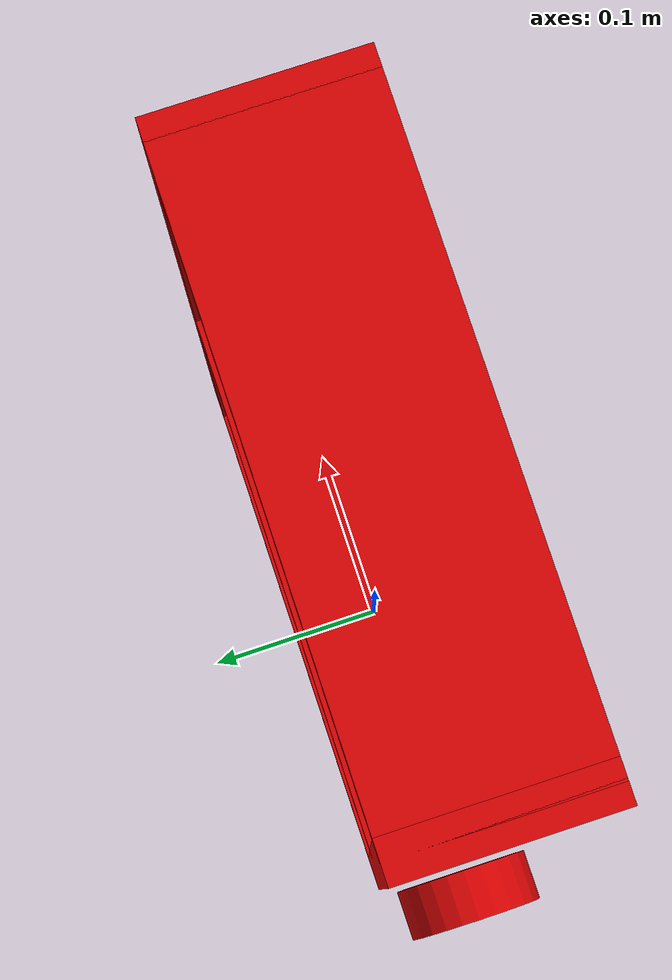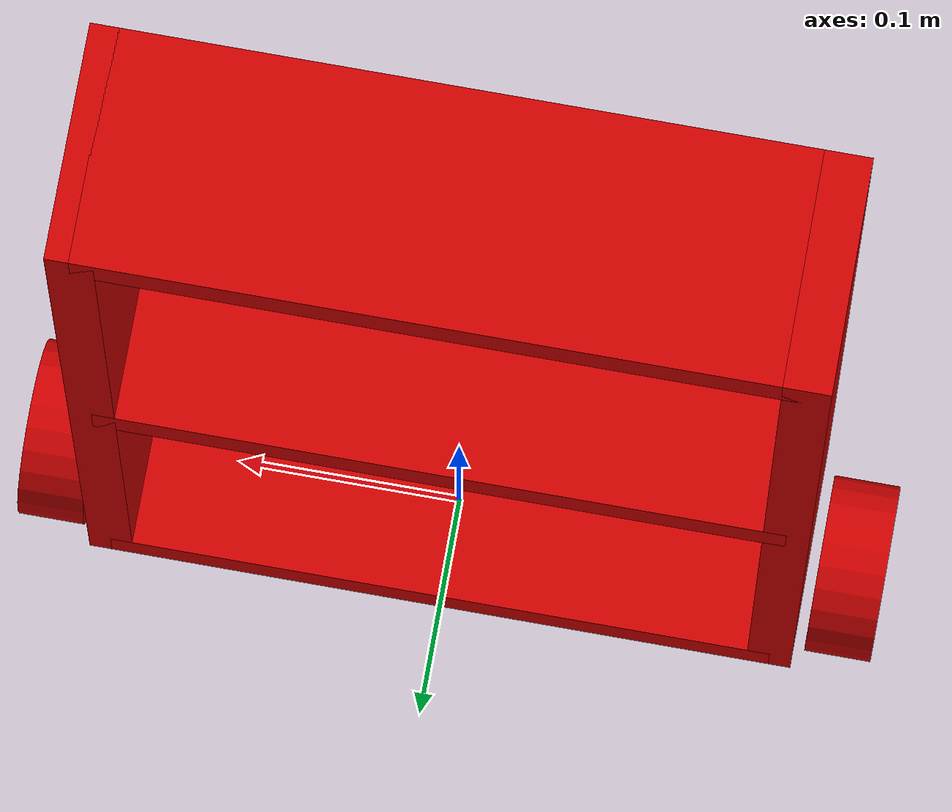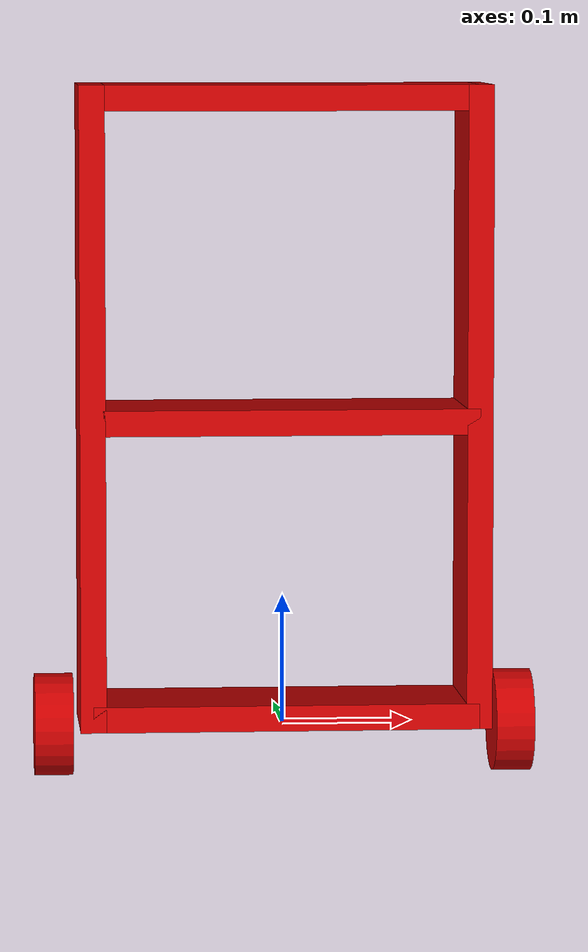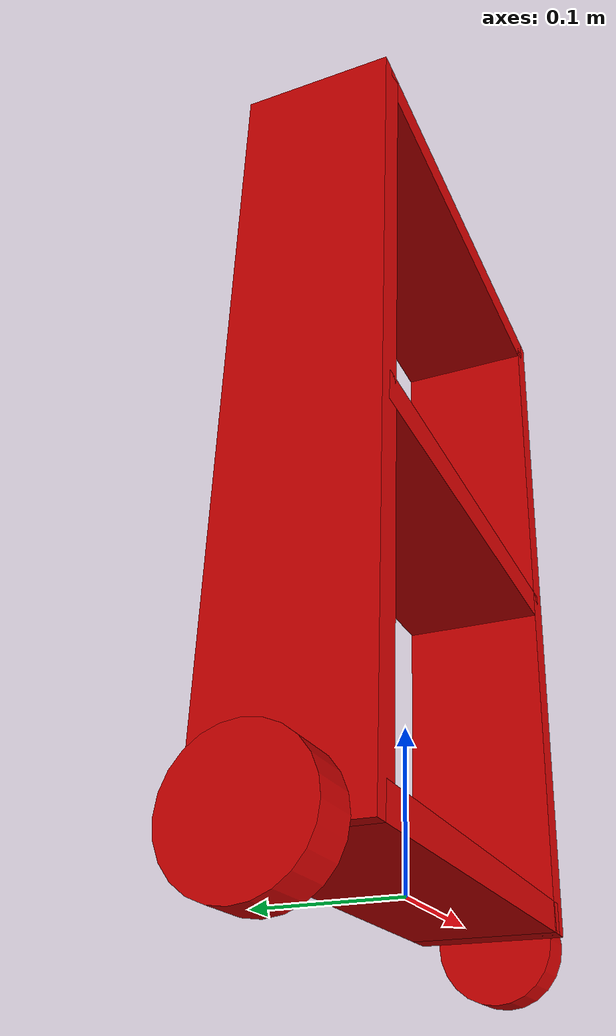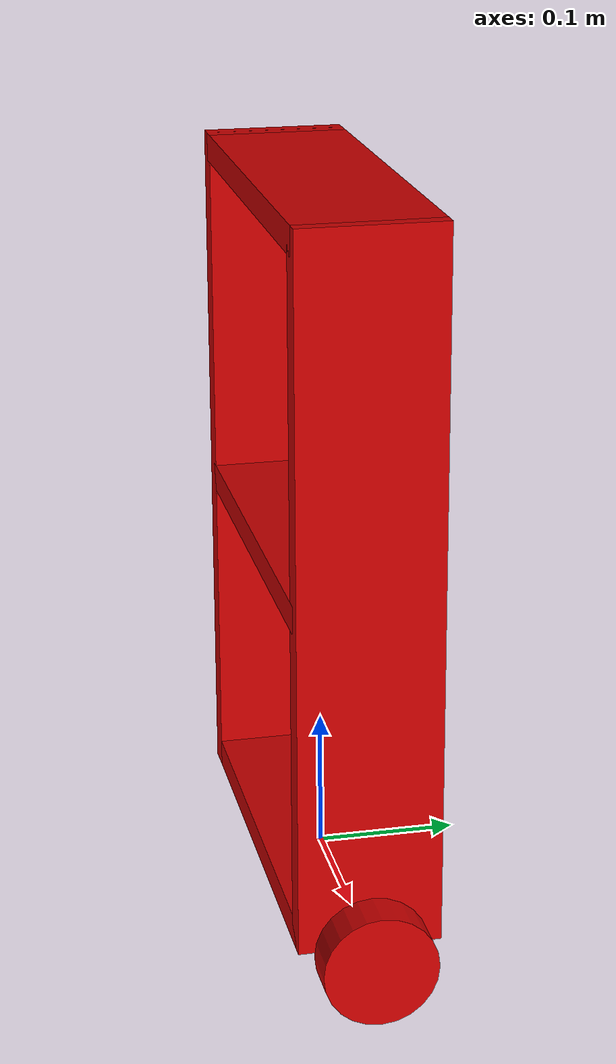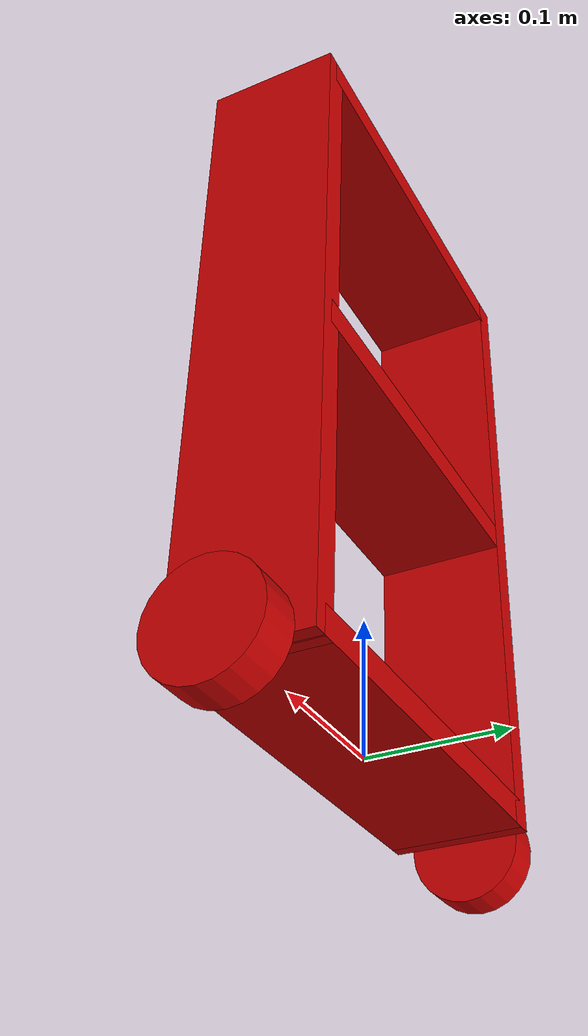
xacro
<?xml version="1.0"?>
<robot xmlns:xacro="http://www.ros.org/wiki/xacro" name="Inverted_Pendulum">
<xacro:property name="horizontal_ply_length" value="0.3"/>
<xacro:property name="horizontal_ply_mass" value="0.1"/>
<xacro:property name="vertical_ply_mass" value="0.15"/>
<xacro:property name="ply_breadth" value="0.1" />
<xacro:property name="ply_thickness" value="0.02" />
<xacro:property name="vertical_ply_length" value="0.5" />
<xacro:property name="wheel_radius" value="0.04"/>
<xacro:property name="wheel_thickness" value="0.03"/>
<xacro:property name="wheel_mass" value="0.1"/>
<xacro:macro name="box_inertia" params="m l w h">
        <inertial>
            <mass value="${m}" />
            <inertia ixx="${(m/12.0)*(w*w+h*h)}" ixy="0" ixz="0" iyy="${(m/12.0)*(l*l+h*h)}" iyz="0"
                izz="${(m/12.0)*(l*l+w*w)}" />
        </inertial>
</xacro:macro>
<xacro:macro name="cylindrical_inertia" params="m r h">
        <inertial>
            <mass value="${m}" />
            <inertia ixx="${(m/12.0)*(3*r*r+h*h)}" ixy="0" ixz="0" iyy="${(m/12.0)*(3*r*r+h*h)}"
                iyz="0" izz="${(m/2.0)*(r*r)}" />
        </inertial>
</xacro:macro>
<material name="red">
  <color rgba="0.8 0 0 1"/>
</material>

    <link name="dummy_link">
    </link>

    <link name="base_link">
        <visual>
            <geometry>
                <box size="${horizontal_ply_length} ${ply_breadth} ${ply_thickness}"/>
            </geometry>
            <material name="red"/>
            <origin xyz="0.0 0.0 ${ply_thickness/2}" />
        </visual>
        <collision>
            <geometry>
                <box size="${horizontal_ply_length} ${ply_breadth} ${ply_thickness}"/>
            </geometry>
            <origin xyz="0.0 0.0 ${ply_thickness/2}" />
        </collision>
        <xacro:box_inertia m="${horizontal_ply_mass}" l="${horizontal_ply_length}" w="${ply_breadth}" h="${ply_thickness}"/>
    </link>
    <joint name="dummy_joint" type="fixed">
        <parent link="dummy_link"/>
        <child link="base_link"/>
    </joint>
    <link name="left_link">
        <visual>
            <geometry>
                <box size="${vertical_ply_length} ${ply_breadth} ${ply_thickness}"/>
            </geometry>
            <material name="red"/>
            <origin xyz="0.0 0.0 ${vertical_ply_length/2}" rpy="0.0 1.57075 0.0"/>
        </visual>
        <collision>
            <geometry>
                <box size="${vertical_ply_length} ${ply_breadth} ${ply_thickness}"/>
            </geometry>
            <origin xyz="0.0 0.0 ${vertical_ply_length/2}" rpy="0.0 1.57075 0.0"/>
        </collision>
        <xacro:box_inertia m="${vertical_ply_mass}" l="${vertical_ply_length}" w="${ply_breadth}" h="${ply_thickness}"/>
    </link>
    <joint name="base_to_left_link" type="fixed">
        <parent link="base_link"/>
        <child link="left_link"/>
        <origin xyz="${horizontal_ply_length/2} 0.0 0.0"/>
    </joint>
    <link name="right_link">
        <visual>
            <geometry>
                <box size="${vertical_ply_length} ${ply_breadth} ${ply_thickness}"/>
            </geometry>
            <material name="red"/>
            <origin xyz="0.0 0.0 ${vertical_ply_length/2}" rpy="0.0 1.57075 0.0"/>
        </visual>
        <collision>
            <geometry>
                <box size="${vertical_ply_length} ${ply_breadth} ${ply_thickness}"/>
            </geometry>
            <origin xyz="0.0 0.0 ${vertical_ply_length/2}" rpy="0.0 1.57075 0.0"/>
        </collision>
    </link>
    <joint name="base_to_right_link" type="fixed">
        <parent link="base_link"/>
        <child link="right_link"/>
        <origin xyz="${-horizontal_ply_length/2} 0.0 0.0" />
    </joint>
    <link name="top_link">
        <visual>
            <geometry>
                <box size="${horizontal_ply_length} ${ply_breadth} ${ply_thickness}"/>
            </geometry>
            <material name="red"/>
            <origin xyz="0.0 0.0 ${-ply_thickness/2}" />
        </visual>
        <collision>
            <geometry>
                <box size="${horizontal_ply_length} ${ply_breadth} ${ply_thickness}"/>
            </geometry>
            <origin xyz="0.0 0.0 ${-ply_thickness/2}" />
        </collision>
        <xacro:box_inertia m="${horizontal_ply_mass}" l="${horizontal_ply_length}" w="${ply_breadth}" h="${ply_thickness}"/>
    </link>
    <joint name="left_to_top_link" type="fixed">
        <parent link="left_link"/>
        <child link="top_link"/>
        <origin xyz="${-horizontal_ply_length/2} 0.0 ${vertical_ply_length}" />

    </joint>
    <link name="middle_link">
        <visual>
            <geometry>
                <box size="${horizontal_ply_length} ${ply_breadth} ${ply_thickness}"/>
            </geometry>
            <material name="red"/>
            <origin xyz="${-horizontal_ply_length/2} 0.0 0.01" />
        </visual>
        <collision>
            <geometry>
                <box size="${horizontal_ply_length} ${ply_breadth} ${ply_thickness}"/>
            </geometry>
            <origin xyz="${-horizontal_ply_length/2} 0.0 0.01" />
        </collision>
        <xacro:box_inertia m="${horizontal_ply_mass}" l="${horizontal_ply_length}" w="${ply_breadth}" h="${ply_thickness}"/>
    </link>
    <joint name="left_to_middle_link" type="fixed">
        <parent link="left_link"/>
        <child link="middle_link"/>
        <origin xyz="0.0 0.0 0.23" />

    </joint>
    <link name="left_wheel">
        <visual>
            <geometry>
                <cylinder radius="${wheel_radius}" length="${wheel_thickness}"/>
            </geometry>
            <material name="red"/>
            <origin rpy="0.0 1.57075 0.0"/>
        </visual>
        <collision>
            <geometry>
                <cylinder radius="${wheel_radius}" length="${wheel_thickness}"/>
            </geometry>
            <origin rpy="0.0 1.57075 0.0"/>
        </collision>
        <xacro:cylindrical_inertia m="${wheel_mass}" r="${wheel_radius}" h="${wheel_thickness}" />
    </link>
    <joint name="base_to_left_wheel" type="continuous">
        <axis xyz="1 0.0 0.0"/>
        <parent link="base_link"/>
        <child link="left_wheel"/>
        <origin xyz="0.18 0.0 0.0" />
    </joint>
    <link name="right_wheel">
        <visual>
            <geometry>
                <cylinder radius="${wheel_radius}" length="${wheel_thickness}"/>
            </geometry>
            <material name="red"/>
            <origin rpy="0.0 1.57075 0.0"/>
        </visual>
        <collision>
            <geometry>
                <cylinder radius="${wheel_radius}" length="${wheel_thickness}"/>
            </geometry>
            <origin rpy="0.0 1.57075 0.0"/>
        </collision>
        <xacro:cylindrical_inertia m="${wheel_mass}" r="${wheel_radius}" h="${wheel_thickness}" />
    </link>
    <joint name="base_to_right_wheel" type="continuous">
        <parent link="base_link"/>
        <child link="right_wheel"/>
        <origin xyz="-0.18 0.0 0.0" />
    </joint>
    <link name="imu_link">
    </link>
    <joint name="top_to_imu_link" type="fixed">
        <parent link="top_link"/>
        <child link="imu_link"/>
        <origin xyz="0.01 0.0 0.0" />

    </joint>
    <xacro:include filename="robot.gazebo.xacro"/>

</robot>
